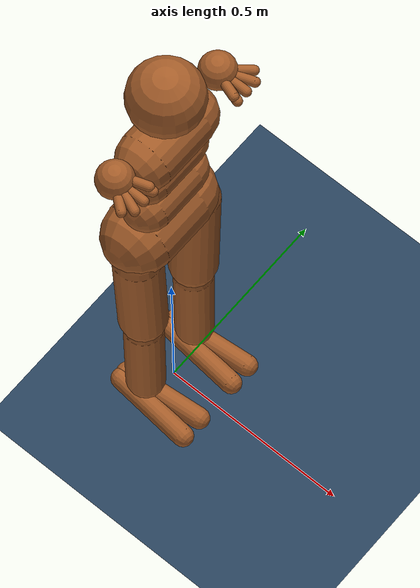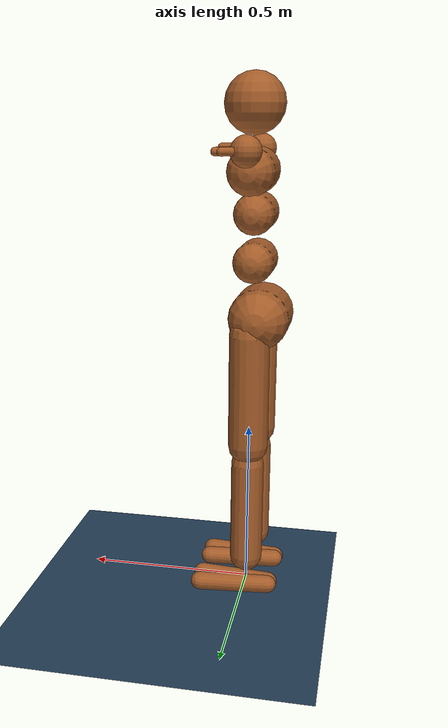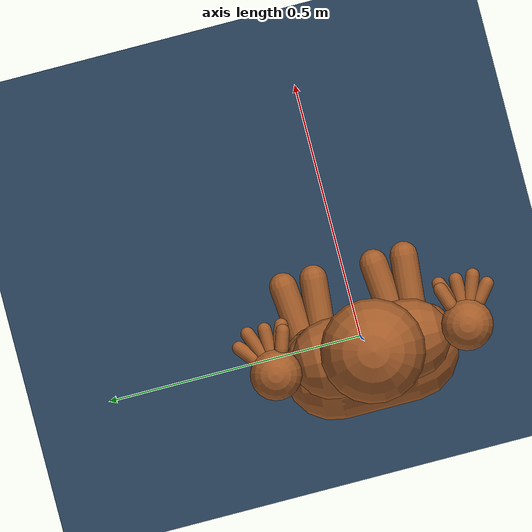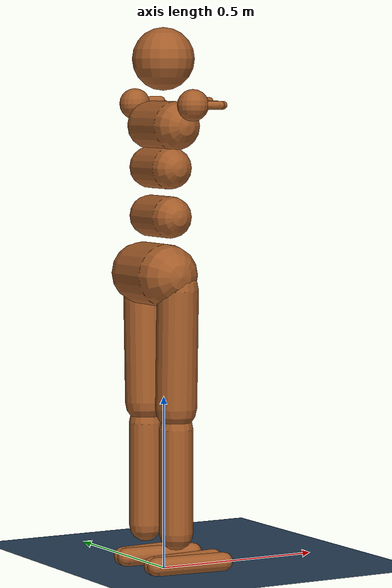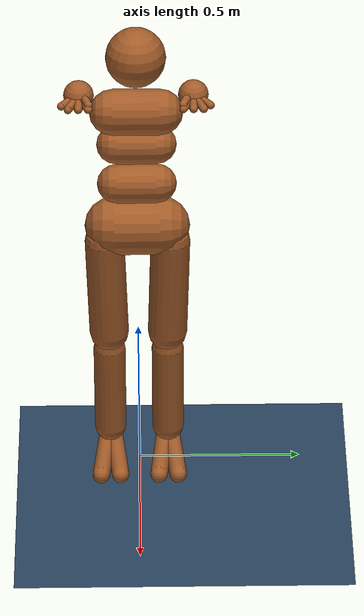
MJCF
<mujoco model="Humanoid">
  <option timestep="0.005"/>

  <visual>
    <map force="0.1" zfar="30"/>
    <rgba haze="0.15 0.25 0.35 1"/>
    <global offwidth="2560" offheight="1440" elevation="-20" azimuth="120"/>
  </visual>

  <statistic center="0 0 0.7"/>

  <asset>
    <texture type="skybox" builtin="gradient" rgb1=".3 .5 .7" rgb2="0 0 0" width="32" height="512"/>
    <texture name="body" type="cube" builtin="flat" mark="cross" width="128" height="128" rgb1="0.8 0.6 0.4" rgb2="0.8 0.6 0.4" markrgb="1 1 1"/>
    <material name="body" texture="body" texuniform="true" rgba="0.8 0.6 .4 1"/>
    <texture name="grid" type="2d" builtin="checker" width="512" height="512" rgb1=".1 .2 .3" rgb2=".2 .3 .4"/>
    <material name="grid" texture="grid" texrepeat="1 1" texuniform="true" reflectance=".2"/>
  </asset>

  <default>
    <motor ctrlrange="-1 1" ctrllimited="true"/>
    <default class="body">

      <!-- geoms -->
      <geom type="capsule" condim="1" friction=".7" solimp=".9 .99 .003" solref=".015 1" material="body" group="1"/>
      <default class="thigh">
        <geom size=".06"/>
      </default>
      <default class="shin">
        <geom fromto="0 0 0 0 0 -.3"  size=".049"/>
      </default>
      <default class="foot">
        <geom size=".027"/>
        <default class="foot1">
          <geom fromto="-.07 -.01 0 .14 -.03 0"/>
        </default>
        <default class="foot2">
          <geom fromto="-.07 .01 0 .14  .03 0"/>
        </default>
      </default>
      <default class="arm_upper">
        <geom size=".04"/>
      </default>
      <default class="arm_lower">
        <geom size=".031"/>
      </default>
      <default class="hand">
        <geom type="sphere" size=".04"/>
      </default>
      <default class="finger">
        <geom type="capsule" size=".012" friction="1.5 .5 .5"/>
      </default>

      <!-- joints -->
      <joint type="hinge" damping=".2" stiffness="1" armature=".01" limited="true" solimplimit="0 .99 .01"/>
      <default class="joint_big">
        <joint damping="5" stiffness="10"/>
        <default class="hip_x">
          <joint range="-30 10"/>
        </default>
        <default class="hip_z">
          <joint range="-60 35"/>
        </default>
        <default class="hip_y">
          <joint axis="0 1 0" range="-150 20"/>
        </default>
        <default class="joint_big_stiff">
          <joint stiffness="20"/>
        </default>
      </default>
      <default class="knee">
        <joint pos="0 0 .02" axis="0 -1 0" range="-160 2"/>
      </default>
      <default class="ankle">
        <joint range="-50 50"/>
        <default class="ankle_y">
          <joint pos="0 0 .08" axis="0 1 0" stiffness="6"/>
        </default>
        <default class="ankle_x">
          <joint pos="0 0 .04" stiffness="3"/>
        </default>
      </default>
      <default class="shoulder">
        <joint range="-85 60"/>
      </default>
      <default class="elbow">
        <joint range="-100 50" stiffness="0"/>
      </default>

      <!-- Умеренная жёсткость для рук -->
      <default class="shoulder_rot">
        <joint stiffness="15" damping="1.5" armature=".005" range="-60 60"/>
      </default>
      <default class="forearm_twist">
        <joint stiffness="10" damping="1" armature=".005" range="-80 80"/>
      </default>
      <default class="wrist">
        <joint stiffness="10" damping="1" armature=".005" range="-30 30"/>
      </default>
      <default class="finger_flex">
        <joint stiffness="5" damping=".3" armature=".003" range="0 80"/>
      </default>
    </default>
  </default>

  <worldbody>
    <geom name="floor" size="0 0 .05" type="plane" material="grid" condim="3"/>
    <light name="spotlight" mode="targetbodycom" target="torso" diffuse=".8 .8 .8" specular="0.3 0.3 0.3" pos="0 -6 4" cutoff="30"/>
    <light name="top" pos="0 0 2" mode="trackcom"/>

    <body name="torso" pos="0 0 1.282" childclass="body">
      <camera name="back" pos="-3 0 1" xyaxes="0 -1 0 1 0 2" mode="trackcom"/>
      <camera name="side" pos="0 -3 1" xyaxes="1 0 0 0 1 2" mode="trackcom"/>
      <freejoint name="root"/>
      <geom name="torso" fromto="0 -.07 0 0 .07 0" size=".07"/>
      <geom name="waist_upper" fromto="-.01 -.06 -.12 -.01 .06 -.12" size=".06"/>

      <!-- Голова -->
      <body name="head" pos="0 0 .19">
        <geom name="head" type="sphere" size=".09"/>
        <camera name="egocentric" pos=".09 0 0" xyaxes="0 -1 0 .1 0 1" fovy="80"/>
      </body>

      <!-- Таз и ноги (ПОЛНОСТЬЮ из коробки) -->
      <body name="waist_lower" pos="-.01 0 -.26">
        <geom name="waist_lower" fromto="0 -.06 0 0 .06 0" size=".06"/>
        <joint name="abdomen_z" pos="0 0 .065" axis="0 0 1" range="-45 45" class="joint_big_stiff"/>
        <joint name="abdomen_y" pos="0 0 .065" axis="0 1 0" range="-75 30" class="joint_big"/>
        <body name="pelvis" pos="0 0 -.165">
          <joint name="abdomen_x" pos="0 0 .1" axis="1 0 0" range="-35 35" class="joint_big"/>
          <geom name="butt" fromto="-.02 -.07 0 -.02 .07 0" size=".09"/>

          <!-- Правая нога -->
          <body name="thigh_right" pos="0 -.1 -.04">
            <joint name="hip_x_right" axis="1 0 0" class="hip_x"/>
            <joint name="hip_z_right" axis="0 0 1" class="hip_z"/>
            <joint name="hip_y_right" class="hip_y"/>
            <geom name="thigh_right" fromto="0 0 0 0 .01 -.34" class="thigh"/>
            <body name="shin_right" pos="0 .01 -.4">
              <joint name="knee_right" class="knee"/>
              <geom name="shin_right" class="shin"/>
              <body name="foot_right" pos="0 0 -.39">
                <joint name="ankle_y_right" class="ankle_y"/>
                <joint name="ankle_x_right" class="ankle_x" axis="1 0 .5"/>
                <geom name="foot1_right" class="foot1"/>
                <geom name="foot2_right" class="foot2"/>
              </body>
            </body>
          </body>

          <!-- Левая нога -->
          <body name="thigh_left" pos="0 .1 -.04">
            <joint name="hip_x_left" axis="-1 0 0" class="hip_x"/>
            <joint name="hip_z_left" axis="0 0 -1" class="hip_z"/>
            <joint name="hip_y_left" class="hip_y"/>
            <geom name="thigh_left" fromto="0 0 0 0 -.01 -.34" class="thigh"/>
            <body name="shin_left" pos="0 -.01 -.4">
              <joint name="knee_left" class="knee"/>
              <geom name="shin_left" fromto="0 0 0 0 0 -.3" class="shin"/>
              <body name="foot_left" pos="0 0 -.39">
                <joint name="ankle_y_left" class="ankle_y"/>
                <joint name="ankle_x_left" class="ankle_x" axis="-1 0 -.5"/>
                <geom name="foot1_left" class="foot1"/>
                <geom name="foot2_left" class="foot2"/>
              </body>
            </body>
          </body>
        </body>
      </body>

      <!-- ==================== ПРАВАЯ РУКА (детализированная) ==================== -->
      <body name="upper_arm_right" pos="0 -.17 .06">
        <!-- 2 сустава плеча (база) -->
        <joint name="shoulder1_right" axis="2 1 1" class="shoulder"/>
        <joint name="shoulder2_right" axis="0 -1 1" class="shoulder"/>

        <!-- Внутренняя ротация плеча (подлопаточная) -->
        <body name="humerus_right" pos="0 0 0">
          <joint name="shoulder_rot_right" axis="0.577 -0.577 -0.577" class="shoulder_rot"/>

          <!-- Локтевая кость (реальный бицепс/трицепс) -->
          <body name="ulna_right" pos="0 0 0">
            <joint name="elbow_right" axis="0 -1 1" class="elbow"/>

            <!-- Лучевая кость (для пронации/супинации) -->
            <body name="radius_right" pos="0 0 0">
              <joint name="forearm_twist_right" axis="0.577 0.577 0.577" class="forearm_twist"/>

              <!-- Кисть с двумя суставами -->
              <body name="wrist_right" pos="0 0 0">
                <joint name="wrist_flex_right" axis="1 0 0" class="wrist"/>
                <body name="wrist_abduct_right" pos="0 0 0">
                  <joint name="wrist_abduct_right" axis="0 1 0" class="wrist"/>
                  <geom name="hand_right" type="sphere" size=".045" material="body" group="1"/>

                  <!-- Сгибатель/разгибатель пальцев (все пальцы одним мотором) -->
                  <body name="fingers_right" pos="0 0 0">
                    <joint name="fingers_flex_right" axis="1 0 0" class="finger_flex"/>
                    <geom name="index_right" fromto=".04 .015 0 .08 .03 0" class="finger"/>
                    <geom name="middle_right" fromto=".04 0 0 .08 0 0" class="finger"/>
                    <geom name="ring_right" fromto=".04 -.015 0 .08 -.03 0" class="finger"/>
                    <geom name="pinky_right" fromto=".035 -.03 0 .06 -.05 0" class="finger"/>
                    <!-- Большой палец (отдельный сустав для оппозиции) -->
                    <body name="thumb_right" pos=".04 .02 .01">
                      <joint name="thumb_flex_right" axis="0 1 0" class="finger_flex"/>
                      <geom name="thumb_right" fromto="0 0 0 .03 .01 0" class="finger"/>
                    </body>
                  </body>
                </body>
              </body>
            </body>
          </body>
        </body>
      </body>

      <!-- ==================== ЛЕВАЯ РУКА (зеркально) ==================== -->
      <body name="upper_arm_left" pos="0 .17 .06">
        <joint name="shoulder1_left" axis="-2 1 -1" class="shoulder"/>
        <joint name="shoulder2_left" axis="0 -1 -1" class="shoulder"/>
        <body name="humerus_left" pos="0 0 0">
          <joint name="shoulder_rot_left" axis="0.577 0.577 -0.577" class="shoulder_rot"/>
          <body name="ulna_left" pos="0 0 0">
            <joint name="elbow_left" axis="0 -1 -1" class="elbow"/>
            <body name="radius_left" pos="0 0 0">
              <joint name="forearm_twist_left" axis="0.577 -0.577 0.577" class="forearm_twist"/>
              <body name="wrist_left" pos="0 0 0">
                <joint name="wrist_flex_left" axis="1 0 0" class="wrist"/>
                <body name="wrist_abduct_left" pos="0 0 0">
                  <joint name="wrist_abduct_left" axis="0 1 0" class="wrist"/>
                  <geom name="hand_left" type="sphere" size=".045" material="body" group="1"/>
                  <body name="fingers_left" pos="0 0 0">
                    <joint name="fingers_flex_left" axis="1 0 0" class="finger_flex"/>
                    <geom name="index_left" fromto=".04 -.015 0 .08 -.03 0" class="finger"/>
                    <geom name="middle_left" fromto=".04 0 0 .08 0 0" class="finger"/>
                    <geom name="ring_left" fromto=".04 .015 0 .08 .03 0" class="finger"/>
                    <geom name="pinky_left" fromto=".035 .03 0 .06 .05 0" class="finger"/>
                    <body name="thumb_left" pos=".04 -.02 .01">
                      <joint name="thumb_flex_left" axis="0 -1 0" class="finger_flex"/>
                      <geom name="thumb_left" fromto="0 0 0 .03 -.01 0" class="finger"/>
                    </body>
                  </body>
                </body>
              </body>
            </body>
          </body>
        </body>
      </body>
    </body>
  </worldbody>

  <!-- Контакты (из коробки) -->
  <contact>
    <exclude body1="waist_lower" body2="thigh_right"/>
    <exclude body1="waist_lower" body2="thigh_left"/>
  </contact>

  <!-- Сухожилия (из коробки) -->
  <tendon>
    <fixed name="hamstring_right" limited="true" range="-0.3 2">
      <joint joint="hip_y_right" coef=".5"/>
      <joint joint="knee_right" coef="-.5"/>
    </fixed>
    <fixed name="hamstring_left" limited="true" range="-0.3 2">
      <joint joint="hip_y_left" coef=".5"/>
      <joint joint="knee_left" coef="-.5"/>
    </fixed>
  </tendon>

  <!-- Актуаторы: только нужные мышцы -->
  <actuator>
    <!-- Ноги и корпус (из коробки) -->
    <motor name="abdomen_z"       gear="40"  joint="abdomen_z"/>
    <motor name="abdomen_y"       gear="40"  joint="abdomen_y"/>
    <motor name="abdomen_x"       gear="40"  joint="abdomen_x"/>
    <motor name="hip_x_right"     gear="40"  joint="hip_x_right"/>
    <motor name="hip_z_right"     gear="40"  joint="hip_z_right"/>
    <motor name="hip_y_right"     gear="120" joint="hip_y_right"/>
    <motor name="knee_right"      gear="80"  joint="knee_right"/>
    <motor name="ankle_y_right"   gear="20"  joint="ankle_y_right"/>
    <motor name="ankle_x_right"   gear="20"  joint="ankle_x_right"/>
    <motor name="hip_x_left"      gear="40"  joint="hip_x_left"/>
    <motor name="hip_z_left"      gear="40"  joint="hip_z_left"/>
    <motor name="hip_y_left"      gear="120" joint="hip_y_left"/>
    <motor name="knee_left"       gear="80"  joint="knee_left"/>
    <motor name="ankle_y_left"    gear="20"  joint="ankle_y_left"/>
    <motor name="ankle_x_left"    gear="20"  joint="ankle_x_left"/>

    <!-- === МЫШЦЫ ПРАВОЙ РУКИ === -->
    <!-- 3 сгибателя локтя -->
    <motor name="biceps_right"        gear="30" joint="elbow_right"/>
    <motor name="brachialis_right"    gear="20" joint="elbow_right"/>
    <motor name="brachioradialis_right" gear="15" joint="elbow_right"/>

    <!-- Разгибатель локтя -->
    <motor name="triceps_right"       gear="-35" joint="elbow_right"/>

    <!-- Пронатор (на лучевой кости) -->
    <motor name="pronator_right"      gear="-20" joint="forearm_twist_right"/>

    <!-- Широчайшая (плечо) -->
    <motor name="latissimus_right"    gear="25" joint="shoulder1_right" ctrlrange="-1 0"/>

    <!-- Подлопаточная (внутренняя ротация) -->
    <motor name="subscapularis_right" gear="20" joint="shoulder_rot_right"/>

    <!-- Приводящая/отводящая кисть -->
    <motor name="wrist_abduct_right"  gear="15" joint="wrist_abduct_right"/>

    <!-- Сгибатель/разгибатель пальцев (групповой) -->
    <motor name="fingers_flex_right"  gear="10" joint="fingers_flex_right"/>
    <motor name="thumb_flex_right"    gear="8"  joint="thumb_flex_right"/>

    <!-- === МЫШЦЫ ЛЕВОЙ РУКИ (зеркально) === -->
    <motor name="biceps_left"        gear="30" joint="elbow_left"/>
    <motor name="brachialis_left"    gear="20" joint="elbow_left"/>
    <motor name="brachioradialis_left" gear="15" joint="elbow_left"/>
    <motor name="triceps_left"       gear="-35" joint="elbow_left"/>
    <motor name="pronator_left"      gear="-20" joint="forearm_twist_left"/>
    <motor name="latissimus_left"    gear="25" joint="shoulder1_left" ctrlrange="-1 0"/>
    <motor name="subscapularis_left" gear="20" joint="shoulder_rot_left"/>
    <motor name="wrist_abduct_left"  gear="15" joint="wrist_abduct_left"/>
    <motor name="fingers_flex_left"  gear="10" joint="fingers_flex_left"/>
    <motor name="thumb_flex_left"    gear="8"  joint="thumb_flex_left"/>
  </actuator>

  <!-- Сенсоры (только нужные) -->
  <sensor>
    <!-- Углы и скорости для 8 ключевых суставов -->
    <jointpos name="shoulder1_right_pos" joint="shoulder1_right"/>
    <jointvel name="shoulder1_right_vel" joint="shoulder1_right"/>

    <jointpos name="shoulder_rot_right_pos" joint="shoulder_rot_right"/>
    <jointvel name="shoulder_rot_right_vel" joint="shoulder_rot_right"/>

    <jointpos name="elbow_right_pos" joint="elbow_right"/>
    <jointvel name="elbow_right_vel" joint="elbow_right"/>

    <jointpos name="forearm_twist_right_pos" joint="forearm_twist_right"/>
    <jointvel name="forearm_twist_right_vel" joint="forearm_twist_right"/>

    <jointpos name="wrist_flex_right_pos" joint="wrist_flex_right"/>
    <jointvel name="wrist_flex_right_vel" joint="wrist_flex_right"/>

    <jointpos name="wrist_abduct_right_pos" joint="wrist_abduct_right"/>
    <jointvel name="wrist_abduct_right_vel" joint="wrist_abduct_right"/>

    <jointpos name="fingers_flex_right_pos" joint="fingers_flex_right"/>
    <jointvel name="fingers_flex_right_vel" joint="fingers_flex_right"/>

    <!-- Для левой руки (симметрично) -->
    <jointpos name="shoulder1_left_pos" joint="shoulder1_left"/>
    <jointvel name="shoulder1_left_vel" joint="shoulder1_left"/>

    <jointpos name="shoulder_rot_left_pos" joint="shoulder_rot_left"/>
    <jointvel name="shoulder_rot_left_vel" joint="shoulder_rot_left"/>

    <jointpos name="elbow_left_pos" joint="elbow_left"/>
    <jointvel name="elbow_left_vel" joint="elbow_left"/>

    <jointpos name="forearm_twist_left_pos" joint="forearm_twist_left"/>
    <jointvel name="forearm_twist_left_vel" joint="forearm_twist_left"/>

    <jointpos name="wrist_flex_left_pos" joint="wrist_flex_left"/>
    <jointvel name="wrist_flex_left_vel" joint="wrist_flex_left"/>

    <jointpos name="wrist_abduct_left_pos" joint="wrist_abduct_left"/>
    <jointvel name="wrist_abduct_left_vel" joint="wrist_abduct_left"/>

    <jointpos name="fingers_flex_left_pos" joint="fingers_flex_left"/>
    <jointvel name="fingers_flex_left_vel" joint="fingers_flex_left"/>

    <!-- Контактные силы на кистях (для ощущения сопротивления) -->
    <contactforce name="hand_right_contact" site1="hand_right"/>
    <contactforce name="hand_left_contact"  site1="hand_left"/>
  </sensor>

  <!-- Ключевые позы (из коробки) -->
  <keyframe>
    <key name="squat"
         qpos="0 0 0.596
               0.988015 0 0.154359 0
               0 0.4 0
               -0.25 -0.5 -2.5 -2.65 -0.8 0.56
               -0.25 -0.5 -2.5 -2.65 -0.8 0.56
               0 0 0 0 0 0"/>
    <key name="stand_on_left_leg"
         qpos="0 0 1.21948
               0.971588 -0.179973 0.135318 -0.0729076
               -0.0516 -0.202 0.23
               -0.24 -0.007 -0.34 -1.76 -0.466 -0.0415
               -0.08 -0.01 -0.37 -0.685 -0.35 -0.09
               0.109 -0.067 -0.7 -0.05 0.12 0.16"/>
    <key name="prone"
         qpos="0.4 0 0.0757706
               0.7325 0 0.680767 0
               0 0.0729 0
               0.0077 0.0019 -0.026 -0.351 -0.27 0
               0.0077 0.0019 -0.026 -0.351 -0.27 0
               0.56 -0.62 -1.752
               0.56 -0.62 -1.752"/>
    <key name="supine"
         qpos="-0.4 0 0.08122
               0.722788 0 -0.69107 0
               0 -0.25 0
               0.0182 0.0142 0.3 0.042 -0.44 -0.02
               0.0182 0.0142 0.3 0.042 -0.44 -0.02
               0.186 -0.73 -1.73
               0.186 -0.73 -1.73"/>
  </keyframe>
</mujoco>
